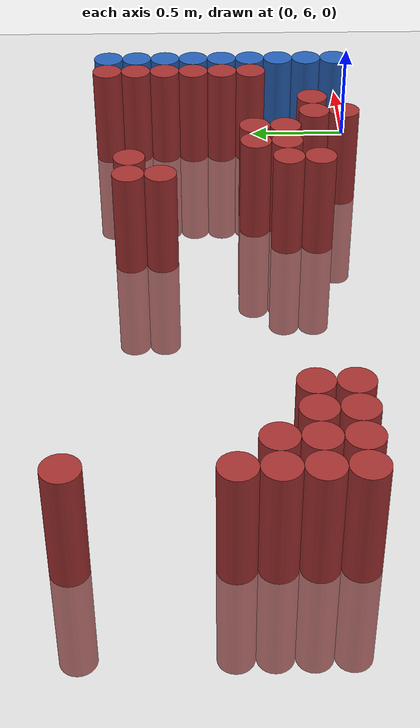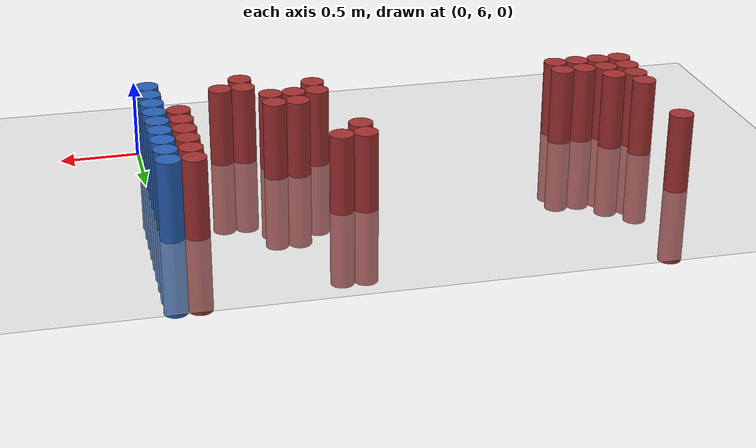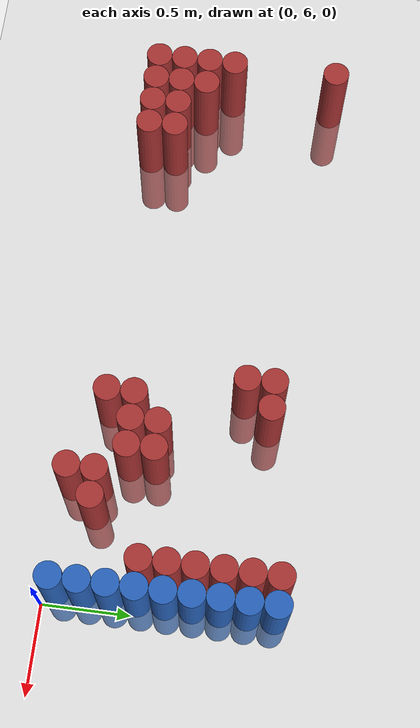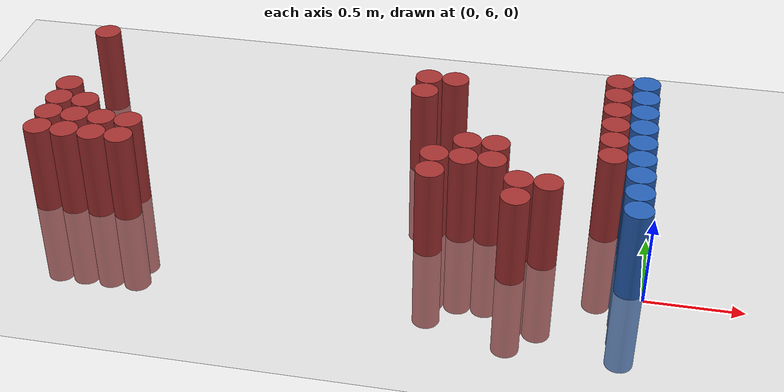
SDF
<sdf version="1.6">
 <world name="default">
  <model name="ground_plane">
   <static>1</static>
   <link name="link">
    <collision name="collision">
     <geometry><plane><normal>0 0 1</normal><size>100 100</size></plane></geometry>
     <surface><friction><ode><mu>100</mu><mu2>50</mu2></ode></friction></surface>
    </collision>
    <visual name="visual">
     <cast_shadows>0</cast_shadows>
     <geometry><plane><normal>0 0 1</normal><size>100 100</size></plane></geometry>
     <material>
      <script><uri>file://media/materials/scripts/gazebo.material</uri><name>Gazebo/Grey</name></script>
     </material>
    </visual>
   </link>
  </model>
  <model name="unit_cylinder_206">
   <static>1</static>
   <pose>-3.225000 6.225000 0.000000 0.000000 0.000000 0.000000</pose>
   <link name="link">
    <inertial>
     <mass>1</mass>
     <inertia><ixx>0.145833</ixx><ixy>0</ixy><ixz>0</ixz><iyy>0.145833</iyy><iyz>0</iyz><izz>0.125</izz></inertia>
    </inertial>
    <collision name="collision">
     <geometry><cylinder><radius>0.075000</radius><length>1</length></cylinder></geometry>
    </collision>
    <visual name="visual">
     <geometry><cylinder><radius>0.075000</radius><length>1</length></cylinder></geometry>
     <material>
      <ambient>0.648000 0.192000 0.192000 1</ambient>
      <diffuse>0.648000 0.192000 0.192000 1</diffuse>
     </material>
     <material>
      <script><name>Gazebo/Grey</name><uri>file://media/materials/scripts/gazebo.material</uri></script>
     </material>
    </visual>
    <sensor name="sensor_contact" type="contact"><contact><collision>collision</collision></contact></sensor>
   </link>
   <plugin filename="gz-sim-touchplugin-system" name="gz::sim::systems::TouchPlugin">
    <target>robot</target>
    <namespace>robot</namespace>
    <time>0.001</time>
    <enabled>true</enabled>
   </plugin>
  </model>
  <model name="unit_cylinder_207">
   <static>1</static>
   <pose>-3.225000 6.375000 0.000000 0.000000 0.000000 0.000000</pose>
   <link name="link">
    <inertial>
     <mass>1</mass>
     <inertia><ixx>0.145833</ixx><ixy>0</ixy><ixz>0</ixz><iyy>0.145833</iyy><iyz>0</iyz><izz>0.125</izz></inertia>
    </inertial>
    <collision name="collision">
     <geometry><cylinder><radius>0.075000</radius><length>1</length></cylinder></geometry>
    </collision>
    <visual name="visual">
     <geometry><cylinder><radius>0.075000</radius><length>1</length></cylinder></geometry>
     <material>
      <ambient>0.648000 0.192000 0.192000 1</ambient>
      <diffuse>0.648000 0.192000 0.192000 1</diffuse>
     </material>
     <material>
      <script><name>Gazebo/Grey</name><uri>file://media/materials/scripts/gazebo.material</uri></script>
     </material>
    </visual>
    <sensor name="sensor_contact" type="contact"><contact><collision>collision</collision></contact></sensor>
   </link>
   <plugin filename="gz-sim-touchplugin-system" name="gz::sim::systems::TouchPlugin">
    <target>robot</target>
    <namespace>robot</namespace>
    <time>0.001</time>
    <enabled>true</enabled>
   </plugin>
  </model>
  <model name="unit_cylinder_208">
   <static>1</static>
   <pose>-3.225000 6.525000 0.000000 0.000000 0.000000 0.000000</pose>
   <link name="link">
    <inertial>
     <mass>1</mass>
     <inertia><ixx>0.145833</ixx><ixy>0</ixy><ixz>0</ixz><iyy>0.145833</iyy><iyz>0</iyz><izz>0.125</izz></inertia>
    </inertial>
    <collision name="collision">
     <geometry><cylinder><radius>0.075000</radius><length>1</length></cylinder></geometry>
    </collision>
    <visual name="visual">
     <geometry><cylinder><radius>0.075000</radius><length>1</length></cylinder></geometry>
     <material>
      <ambient>0.648000 0.192000 0.192000 1</ambient>
      <diffuse>0.648000 0.192000 0.192000 1</diffuse>
     </material>
     <material>
      <script><name>Gazebo/Grey</name><uri>file://media/materials/scripts/gazebo.material</uri></script>
     </material>
    </visual>
    <sensor name="sensor_contact" type="contact"><contact><collision>collision</collision></contact></sensor>
   </link>
   <plugin filename="gz-sim-touchplugin-system" name="gz::sim::systems::TouchPlugin">
    <target>robot</target>
    <namespace>robot</namespace>
    <time>0.001</time>
    <enabled>true</enabled>
   </plugin>
  </model>
  <model name="unit_cylinder_209">
   <static>1</static>
   <pose>-3.225000 6.675000 0.000000 0.000000 0.000000 0.000000</pose>
   <link name="link">
    <inertial>
     <mass>1</mass>
     <inertia><ixx>0.145833</ixx><ixy>0</ixy><ixz>0</ixz><iyy>0.145833</iyy><iyz>0</iyz><izz>0.125</izz></inertia>
    </inertial>
    <collision name="collision">
     <geometry><cylinder><radius>0.075000</radius><length>1</length></cylinder></geometry>
    </collision>
    <visual name="visual">
     <geometry><cylinder><radius>0.075000</radius><length>1</length></cylinder></geometry>
     <material>
      <ambient>0.648000 0.192000 0.192000 1</ambient>
      <diffuse>0.648000 0.192000 0.192000 1</diffuse>
     </material>
     <material>
      <script><name>Gazebo/Grey</name><uri>file://media/materials/scripts/gazebo.material</uri></script>
     </material>
    </visual>
    <sensor name="sensor_contact" type="contact"><contact><collision>collision</collision></contact></sensor>
   </link>
   <plugin filename="gz-sim-touchplugin-system" name="gz::sim::systems::TouchPlugin">
    <target>robot</target>
    <namespace>robot</namespace>
    <time>0.001</time>
    <enabled>true</enabled>
   </plugin>
  </model>
  <model name="unit_cylinder_210">
   <static>1</static>
   <pose>-3.225000 7.275000 0.000000 0.000000 0.000000 0.000000</pose>
   <link name="link">
    <inertial>
     <mass>1</mass>
     <inertia><ixx>0.145833</ixx><ixy>0</ixy><ixz>0</ixz><iyy>0.145833</iyy><iyz>0</iyz><izz>0.125</izz></inertia>
    </inertial>
    <collision name="collision">
     <geometry><cylinder><radius>0.075000</radius><length>1</length></cylinder></geometry>
    </collision>
    <visual name="visual">
     <geometry><cylinder><radius>0.075000</radius><length>1</length></cylinder></geometry>
     <material>
      <ambient>0.648000 0.192000 0.192000 1</ambient>
      <diffuse>0.648000 0.192000 0.192000 1</diffuse>
     </material>
     <material>
      <script><name>Gazebo/Grey</name><uri>file://media/materials/scripts/gazebo.material</uri></script>
     </material>
    </visual>
    <sensor name="sensor_contact" type="contact"><contact><collision>collision</collision></contact></sensor>
   </link>
   <plugin filename="gz-sim-touchplugin-system" name="gz::sim::systems::TouchPlugin">
    <target>robot</target>
    <namespace>robot</namespace>
    <time>0.001</time>
    <enabled>true</enabled>
   </plugin>
  </model>
  <model name="unit_cylinder_216">
   <static>1</static>
   <pose>-3.075000 6.225000 0.000000 0.000000 0.000000 0.000000</pose>
   <link name="link">
    <inertial>
     <mass>1</mass>
     <inertia><ixx>0.145833</ixx><ixy>0</ixy><ixz>0</ixz><iyy>0.145833</iyy><iyz>0</iyz><izz>0.125</izz></inertia>
    </inertial>
    <collision name="collision">
     <geometry><cylinder><radius>0.075000</radius><length>1</length></cylinder></geometry>
    </collision>
    <visual name="visual">
     <geometry><cylinder><radius>0.075000</radius><length>1</length></cylinder></geometry>
     <material>
      <ambient>0.648000 0.192000 0.192000 1</ambient>
      <diffuse>0.648000 0.192000 0.192000 1</diffuse>
     </material>
     <material>
      <script><name>Gazebo/Grey</name><uri>file://media/materials/scripts/gazebo.material</uri></script>
     </material>
    </visual>
    <sensor name="sensor_contact" type="contact"><contact><collision>collision</collision></contact></sensor>
   </link>
   <plugin filename="gz-sim-touchplugin-system" name="gz::sim::systems::TouchPlugin">
    <target>robot</target>
    <namespace>robot</namespace>
    <time>0.001</time>
    <enabled>true</enabled>
   </plugin>
  </model>
  <model name="unit_cylinder_217">
   <static>1</static>
   <pose>-3.075000 6.375000 0.000000 0.000000 0.000000 0.000000</pose>
   <link name="link">
    <inertial>
     <mass>1</mass>
     <inertia><ixx>0.145833</ixx><ixy>0</ixy><ixz>0</ixz><iyy>0.145833</iyy><iyz>0</iyz><izz>0.125</izz></inertia>
    </inertial>
    <collision name="collision">
     <geometry><cylinder><radius>0.075000</radius><length>1</length></cylinder></geometry>
    </collision>
    <visual name="visual">
     <geometry><cylinder><radius>0.075000</radius><length>1</length></cylinder></geometry>
     <material>
      <ambient>0.648000 0.192000 0.192000 1</ambient>
      <diffuse>0.648000 0.192000 0.192000 1</diffuse>
     </material>
     <material>
      <script><name>Gazebo/Grey</name><uri>file://media/materials/scripts/gazebo.material</uri></script>
     </material>
    </visual>
    <sensor name="sensor_contact" type="contact"><contact><collision>collision</collision></contact></sensor>
   </link>
   <plugin filename="gz-sim-touchplugin-system" name="gz::sim::systems::TouchPlugin">
    <target>robot</target>
    <namespace>robot</namespace>
    <time>0.001</time>
    <enabled>true</enabled>
   </plugin>
  </model>
  <model name="unit_cylinder_218">
   <static>1</static>
   <pose>-3.075000 6.525000 0.000000 0.000000 0.000000 0.000000</pose>
   <link name="link">
    <inertial>
     <mass>1</mass>
     <inertia><ixx>0.145833</ixx><ixy>0</ixy><ixz>0</ixz><iyy>0.145833</iyy><iyz>0</iyz><izz>0.125</izz></inertia>
    </inertial>
    <collision name="collision">
     <geometry><cylinder><radius>0.075000</radius><length>1</length></cylinder></geometry>
    </collision>
    <visual name="visual">
     <geometry><cylinder><radius>0.075000</radius><length>1</length></cylinder></geometry>
     <material>
      <ambient>0.648000 0.192000 0.192000 1</ambient>
      <diffuse>0.648000 0.192000 0.192000 1</diffuse>
     </material>
     <material>
      <script><name>Gazebo/Grey</name><uri>file://media/materials/scripts/gazebo.material</uri></script>
     </material>
    </visual>
    <sensor name="sensor_contact" type="contact"><contact><collision>collision</collision></contact></sensor>
   </link>
   <plugin filename="gz-sim-touchplugin-system" name="gz::sim::systems::TouchPlugin">
    <target>robot</target>
    <namespace>robot</namespace>
    <time>0.001</time>
    <enabled>true</enabled>
   </plugin>
  </model>
  <model name="unit_cylinder_226">
   <static>1</static>
   <pose>-2.925000 6.225000 0.000000 0.000000 0.000000 0.000000</pose>
   <link name="link">
    <inertial>
     <mass>1</mass>
     <inertia><ixx>0.145833</ixx><ixy>0</ixy><ixz>0</ixz><iyy>0.145833</iyy><iyz>0</iyz><izz>0.125</izz></inertia>
    </inertial>
    <collision name="collision">
     <geometry><cylinder><radius>0.075000</radius><length>1</length></cylinder></geometry>
    </collision>
    <visual name="visual">
     <geometry><cylinder><radius>0.075000</radius><length>1</length></cylinder></geometry>
     <material>
      <ambient>0.648000 0.192000 0.192000 1</ambient>
      <diffuse>0.648000 0.192000 0.192000 1</diffuse>
     </material>
     <material>
      <script><name>Gazebo/Grey</name><uri>file://media/materials/scripts/gazebo.material</uri></script>
     </material>
    </visual>
    <sensor name="sensor_contact" type="contact"><contact><collision>collision</collision></contact></sensor>
   </link>
   <plugin filename="gz-sim-touchplugin-system" name="gz::sim::systems::TouchPlugin">
    <target>robot</target>
    <namespace>robot</namespace>
    <time>0.001</time>
    <enabled>true</enabled>
   </plugin>
  </model>
  <model name="unit_cylinder_227">
   <static>1</static>
   <pose>-2.925000 6.375000 0.000000 0.000000 0.000000 0.000000</pose>
   <link name="link">
    <inertial>
     <mass>1</mass>
     <inertia><ixx>0.145833</ixx><ixy>0</ixy><ixz>0</ixz><iyy>0.145833</iyy><iyz>0</iyz><izz>0.125</izz></inertia>
    </inertial>
    <collision name="collision">
     <geometry><cylinder><radius>0.075000</radius><length>1</length></cylinder></geometry>
    </collision>
    <visual name="visual">
     <geometry><cylinder><radius>0.075000</radius><length>1</length></cylinder></geometry>
     <material>
      <ambient>0.648000 0.192000 0.192000 1</ambient>
      <diffuse>0.648000 0.192000 0.192000 1</diffuse>
     </material>
     <material>
      <script><name>Gazebo/Grey</name><uri>file://media/materials/scripts/gazebo.material</uri></script>
     </material>
    </visual>
    <sensor name="sensor_contact" type="contact"><contact><collision>collision</collision></contact></sensor>
   </link>
   <plugin filename="gz-sim-touchplugin-system" name="gz::sim::systems::TouchPlugin">
    <target>robot</target>
    <namespace>robot</namespace>
    <time>0.001</time>
    <enabled>true</enabled>
   </plugin>
  </model>
  <model name="unit_cylinder_234">
   <static>1</static>
   <pose>-2.775000 6.225000 0.000000 0.000000 0.000000 0.000000</pose>
   <link name="link">
    <inertial>
     <mass>1</mass>
     <inertia><ixx>0.145833</ixx><ixy>0</ixy><ixz>0</ixz><iyy>0.145833</iyy><iyz>0</iyz><izz>0.125</izz></inertia>
    </inertial>
    <collision name="collision">
     <geometry><cylinder><radius>0.075000</radius><length>1</length></cylinder></geometry>
    </collision>
    <visual name="visual">
     <geometry><cylinder><radius>0.075000</radius><length>1</length></cylinder></geometry>
     <material>
      <ambient>0.648000 0.192000 0.192000 1</ambient>
      <diffuse>0.648000 0.192000 0.192000 1</diffuse>
     </material>
     <material>
      <script><name>Gazebo/Grey</name><uri>file://media/materials/scripts/gazebo.material</uri></script>
     </material>
    </visual>
    <sensor name="sensor_contact" type="contact"><contact><collision>collision</collision></contact></sensor>
   </link>
   <plugin filename="gz-sim-touchplugin-system" name="gz::sim::systems::TouchPlugin">
    <target>robot</target>
    <namespace>robot</namespace>
    <time>0.001</time>
    <enabled>true</enabled>
   </plugin>
  </model>
  <model name="unit_cylinder_235">
   <static>1</static>
   <pose>-2.775000 6.375000 0.000000 0.000000 0.000000 0.000000</pose>
   <link name="link">
    <inertial>
     <mass>1</mass>
     <inertia><ixx>0.145833</ixx><ixy>0</ixy><ixz>0</ixz><iyy>0.145833</iyy><iyz>0</iyz><izz>0.125</izz></inertia>
    </inertial>
    <collision name="collision">
     <geometry><cylinder><radius>0.075000</radius><length>1</length></cylinder></geometry>
    </collision>
    <visual name="visual">
     <geometry><cylinder><radius>0.075000</radius><length>1</length></cylinder></geometry>
     <material>
      <ambient>0.648000 0.192000 0.192000 1</ambient>
      <diffuse>0.648000 0.192000 0.192000 1</diffuse>
     </material>
     <material>
      <script><name>Gazebo/Grey</name><uri>file://media/materials/scripts/gazebo.material</uri></script>
     </material>
    </visual>
    <sensor name="sensor_contact" type="contact"><contact><collision>collision</collision></contact></sensor>
   </link>
   <plugin filename="gz-sim-touchplugin-system" name="gz::sim::systems::TouchPlugin">
    <target>robot</target>
    <namespace>robot</namespace>
    <time>0.001</time>
    <enabled>true</enabled>
   </plugin>
  </model>
  <model name="unit_cylinder_268">
   <static>1</static>
   <pose>-1.275000 6.975000 0.000000 0.000000 0.000000 0.000000</pose>
   <link name="link">
    <inertial>
     <mass>1</mass>
     <inertia><ixx>0.145833</ixx><ixy>0</ixy><ixz>0</ixz><iyy>0.145833</iyy><iyz>0</iyz><izz>0.125</izz></inertia>
    </inertial>
    <collision name="collision">
     <geometry><cylinder><radius>0.075000</radius><length>1</length></cylinder></geometry>
    </collision>
    <visual name="visual">
     <geometry><cylinder><radius>0.075000</radius><length>1</length></cylinder></geometry>
     <material>
      <ambient>0.648000 0.192000 0.192000 1</ambient>
      <diffuse>0.648000 0.192000 0.192000 1</diffuse>
     </material>
     <material>
      <script><name>Gazebo/Grey</name><uri>file://media/materials/scripts/gazebo.material</uri></script>
     </material>
    </visual>
    <sensor name="sensor_contact" type="contact"><contact><collision>collision</collision></contact></sensor>
   </link>
   <plugin filename="gz-sim-touchplugin-system" name="gz::sim::systems::TouchPlugin">
    <target>robot</target>
    <namespace>robot</namespace>
    <time>0.001</time>
    <enabled>true</enabled>
   </plugin>
  </model>
  <model name="unit_cylinder_269">
   <static>1</static>
   <pose>-1.275000 7.125000 0.000000 0.000000 0.000000 0.000000</pose>
   <link name="link">
    <inertial>
     <mass>1</mass>
     <inertia><ixx>0.145833</ixx><ixy>0</ixy><ixz>0</ixz><iyy>0.145833</iyy><iyz>0</iyz><izz>0.125</izz></inertia>
    </inertial>
    <collision name="collision">
     <geometry><cylinder><radius>0.075000</radius><length>1</length></cylinder></geometry>
    </collision>
    <visual name="visual">
     <geometry><cylinder><radius>0.075000</radius><length>1</length></cylinder></geometry>
     <material>
      <ambient>0.648000 0.192000 0.192000 1</ambient>
      <diffuse>0.648000 0.192000 0.192000 1</diffuse>
     </material>
     <material>
      <script><name>Gazebo/Grey</name><uri>file://media/materials/scripts/gazebo.material</uri></script>
     </material>
    </visual>
    <sensor name="sensor_contact" type="contact"><contact><collision>collision</collision></contact></sensor>
   </link>
   <plugin filename="gz-sim-touchplugin-system" name="gz::sim::systems::TouchPlugin">
    <target>robot</target>
    <namespace>robot</namespace>
    <time>0.001</time>
    <enabled>true</enabled>
   </plugin>
  </model>
  <model name="unit_cylinder_270">
   <static>1</static>
   <pose>-1.125000 6.225000 0.000000 0.000000 0.000000 0.000000</pose>
   <link name="link">
    <inertial>
     <mass>1</mass>
     <inertia><ixx>0.145833</ixx><ixy>0</ixy><ixz>0</ixz><iyy>0.145833</iyy><iyz>0</iyz><izz>0.125</izz></inertia>
    </inertial>
    <collision name="collision">
     <geometry><cylinder><radius>0.075000</radius><length>1</length></cylinder></geometry>
    </collision>
    <visual name="visual">
     <geometry><cylinder><radius>0.075000</radius><length>1</length></cylinder></geometry>
     <material>
      <ambient>0.648000 0.192000 0.192000 1</ambient>
      <diffuse>0.648000 0.192000 0.192000 1</diffuse>
     </material>
     <material>
      <script><name>Gazebo/Grey</name><uri>file://media/materials/scripts/gazebo.material</uri></script>
     </material>
    </visual>
    <sensor name="sensor_contact" type="contact"><contact><collision>collision</collision></contact></sensor>
   </link>
   <plugin filename="gz-sim-touchplugin-system" name="gz::sim::systems::TouchPlugin">
    <target>robot</target>
    <namespace>robot</namespace>
    <time>0.001</time>
    <enabled>true</enabled>
   </plugin>
  </model>
  <model name="unit_cylinder_271">
   <static>1</static>
   <pose>-1.125000 6.375000 0.000000 0.000000 0.000000 0.000000</pose>
   <link name="link">
    <inertial>
     <mass>1</mass>
     <inertia><ixx>0.145833</ixx><ixy>0</ixy><ixz>0</ixz><iyy>0.145833</iyy><iyz>0</iyz><izz>0.125</izz></inertia>
    </inertial>
    <collision name="collision">
     <geometry><cylinder><radius>0.075000</radius><length>1</length></cylinder></geometry>
    </collision>
    <visual name="visual">
     <geometry><cylinder><radius>0.075000</radius><length>1</length></cylinder></geometry>
     <material>
      <ambient>0.648000 0.192000 0.192000 1</ambient>
      <diffuse>0.648000 0.192000 0.192000 1</diffuse>
     </material>
     <material>
      <script><name>Gazebo/Grey</name><uri>file://media/materials/scripts/gazebo.material</uri></script>
     </material>
    </visual>
    <sensor name="sensor_contact" type="contact"><contact><collision>collision</collision></contact></sensor>
   </link>
   <plugin filename="gz-sim-touchplugin-system" name="gz::sim::systems::TouchPlugin">
    <target>robot</target>
    <namespace>robot</namespace>
    <time>0.001</time>
    <enabled>true</enabled>
   </plugin>
  </model>
  <model name="unit_cylinder_272">
   <static>1</static>
   <pose>-1.125000 7.125000 0.000000 0.000000 0.000000 0.000000</pose>
   <link name="link">
    <inertial>
     <mass>1</mass>
     <inertia><ixx>0.145833</ixx><ixy>0</ixy><ixz>0</ixz><iyy>0.145833</iyy><iyz>0</iyz><izz>0.125</izz></inertia>
    </inertial>
    <collision name="collision">
     <geometry><cylinder><radius>0.075000</radius><length>1</length></cylinder></geometry>
    </collision>
    <visual name="visual">
     <geometry><cylinder><radius>0.075000</radius><length>1</length></cylinder></geometry>
     <material>
      <ambient>0.648000 0.192000 0.192000 1</ambient>
      <diffuse>0.648000 0.192000 0.192000 1</diffuse>
     </material>
     <material>
      <script><name>Gazebo/Grey</name><uri>file://media/materials/scripts/gazebo.material</uri></script>
     </material>
    </visual>
    <sensor name="sensor_contact" type="contact"><contact><collision>collision</collision></contact></sensor>
   </link>
   <plugin filename="gz-sim-touchplugin-system" name="gz::sim::systems::TouchPlugin">
    <target>robot</target>
    <namespace>robot</namespace>
    <time>0.001</time>
    <enabled>true</enabled>
   </plugin>
  </model>
  <model name="unit_cylinder_274">
   <static>1</static>
   <pose>-0.975000 6.375000 0.000000 0.000000 0.000000 0.000000</pose>
   <link name="link">
    <inertial>
     <mass>1</mass>
     <inertia><ixx>0.145833</ixx><ixy>0</ixy><ixz>0</ixz><iyy>0.145833</iyy><iyz>0</iyz><izz>0.125</izz></inertia>
    </inertial>
    <collision name="collision">
     <geometry><cylinder><radius>0.075000</radius><length>1</length></cylinder></geometry>
    </collision>
    <visual name="visual">
     <geometry><cylinder><radius>0.075000</radius><length>1</length></cylinder></geometry>
     <material>
      <ambient>0.648000 0.192000 0.192000 1</ambient>
      <diffuse>0.648000 0.192000 0.192000 1</diffuse>
     </material>
     <material>
      <script><name>Gazebo/Grey</name><uri>file://media/materials/scripts/gazebo.material</uri></script>
     </material>
    </visual>
    <sensor name="sensor_contact" type="contact"><contact><collision>collision</collision></contact></sensor>
   </link>
   <plugin filename="gz-sim-touchplugin-system" name="gz::sim::systems::TouchPlugin">
    <target>robot</target>
    <namespace>robot</namespace>
    <time>0.001</time>
    <enabled>true</enabled>
   </plugin>
  </model>
  <model name="unit_cylinder_275">
   <static>1</static>
   <pose>-0.975000 6.525000 0.000000 0.000000 0.000000 0.000000</pose>
   <link name="link">
    <inertial>
     <mass>1</mass>
     <inertia><ixx>0.145833</ixx><ixy>0</ixy><ixz>0</ixz><iyy>0.145833</iyy><iyz>0</iyz><izz>0.125</izz></inertia>
    </inertial>
    <collision name="collision">
     <geometry><cylinder><radius>0.075000</radius><length>1</length></cylinder></geometry>
    </collision>
    <visual name="visual">
     <geometry><cylinder><radius>0.075000</radius><length>1</length></cylinder></geometry>
     <material>
      <ambient>0.648000 0.192000 0.192000 1</ambient>
      <diffuse>0.648000 0.192000 0.192000 1</diffuse>
     </material>
     <material>
      <script><name>Gazebo/Grey</name><uri>file://media/materials/scripts/gazebo.material</uri></script>
     </material>
    </visual>
    <sensor name="sensor_contact" type="contact"><contact><collision>collision</collision></contact></sensor>
   </link>
   <plugin filename="gz-sim-touchplugin-system" name="gz::sim::systems::TouchPlugin">
    <target>robot</target>
    <namespace>robot</namespace>
    <time>0.001</time>
    <enabled>true</enabled>
   </plugin>
  </model>
  <model name="unit_cylinder_280">
   <static>1</static>
   <pose>-0.825000 6.375000 0.000000 0.000000 0.000000 0.000000</pose>
   <link name="link">
    <inertial>
     <mass>1</mass>
     <inertia><ixx>0.145833</ixx><ixy>0</ixy><ixz>0</ixz><iyy>0.145833</iyy><iyz>0</iyz><izz>0.125</izz></inertia>
    </inertial>
    <collision name="collision">
     <geometry><cylinder><radius>0.075000</radius><length>1</length></cylinder></geometry>
    </collision>
    <visual name="visual">
     <geometry><cylinder><radius>0.075000</radius><length>1</length></cylinder></geometry>
     <material>
      <ambient>0.648000 0.192000 0.192000 1</ambient>
      <diffuse>0.648000 0.192000 0.192000 1</diffuse>
     </material>
     <material>
      <script><name>Gazebo/Grey</name><uri>file://media/materials/scripts/gazebo.material</uri></script>
     </material>
    </visual>
    <sensor name="sensor_contact" type="contact"><contact><collision>collision</collision></contact></sensor>
   </link>
   <plugin filename="gz-sim-touchplugin-system" name="gz::sim::systems::TouchPlugin">
    <target>robot</target>
    <namespace>robot</namespace>
    <time>0.001</time>
    <enabled>true</enabled>
   </plugin>
  </model>
  <model name="unit_cylinder_281">
   <static>1</static>
   <pose>-0.825000 6.525000 0.000000 0.000000 0.000000 0.000000</pose>
   <link name="link">
    <inertial>
     <mass>1</mass>
     <inertia><ixx>0.145833</ixx><ixy>0</ixy><ixz>0</ixz><iyy>0.145833</iyy><iyz>0</iyz><izz>0.125</izz></inertia>
    </inertial>
    <collision name="collision">
     <geometry><cylinder><radius>0.075000</radius><length>1</length></cylinder></geometry>
    </collision>
    <visual name="visual">
     <geometry><cylinder><radius>0.075000</radius><length>1</length></cylinder></geometry>
     <material>
      <ambient>0.648000 0.192000 0.192000 1</ambient>
      <diffuse>0.648000 0.192000 0.192000 1</diffuse>
     </material>
     <material>
      <script><name>Gazebo/Grey</name><uri>file://media/materials/scripts/gazebo.material</uri></script>
     </material>
    </visual>
    <sensor name="sensor_contact" type="contact"><contact><collision>collision</collision></contact></sensor>
   </link>
   <plugin filename="gz-sim-touchplugin-system" name="gz::sim::systems::TouchPlugin">
    <target>robot</target>
    <namespace>robot</namespace>
    <time>0.001</time>
    <enabled>true</enabled>
   </plugin>
  </model>
  <model name="unit_cylinder_285">
   <static>1</static>
   <pose>-0.675000 6.075000 0.000000 0.000000 0.000000 0.000000</pose>
   <link name="link">
    <inertial>
     <mass>1</mass>
     <inertia><ixx>0.145833</ixx><ixy>0</ixy><ixz>0</ixz><iyy>0.145833</iyy><iyz>0</iyz><izz>0.125</izz></inertia>
    </inertial>
    <collision name="collision">
     <geometry><cylinder><radius>0.075000</radius><length>1</length></cylinder></geometry>
    </collision>
    <visual name="visual">
     <geometry><cylinder><radius>0.075000</radius><length>1</length></cylinder></geometry>
     <material>
      <ambient>0.648000 0.192000 0.192000 1</ambient>
      <diffuse>0.648000 0.192000 0.192000 1</diffuse>
     </material>
     <material>
      <script><name>Gazebo/Grey</name><uri>file://media/materials/scripts/gazebo.material</uri></script>
     </material>
    </visual>
    <sensor name="sensor_contact" type="contact"><contact><collision>collision</collision></contact></sensor>
   </link>
   <plugin filename="gz-sim-touchplugin-system" name="gz::sim::systems::TouchPlugin">
    <target>robot</target>
    <namespace>robot</namespace>
    <time>0.001</time>
    <enabled>true</enabled>
   </plugin>
  </model>
  <model name="unit_cylinder_286">
   <static>1</static>
   <pose>-0.675000 6.225000 0.000000 0.000000 0.000000 0.000000</pose>
   <link name="link">
    <inertial>
     <mass>1</mass>
     <inertia><ixx>0.145833</ixx><ixy>0</ixy><ixz>0</ixz><iyy>0.145833</iyy><iyz>0</iyz><izz>0.125</izz></inertia>
    </inertial>
    <collision name="collision">
     <geometry><cylinder><radius>0.075000</radius><length>1</length></cylinder></geometry>
    </collision>
    <visual name="visual">
     <geometry><cylinder><radius>0.075000</radius><length>1</length></cylinder></geometry>
     <material>
      <ambient>0.648000 0.192000 0.192000 1</ambient>
      <diffuse>0.648000 0.192000 0.192000 1</diffuse>
     </material>
     <material>
      <script><name>Gazebo/Grey</name><uri>file://media/materials/scripts/gazebo.material</uri></script>
     </material>
    </visual>
    <sensor name="sensor_contact" type="contact"><contact><collision>collision</collision></contact></sensor>
   </link>
   <plugin filename="gz-sim-touchplugin-system" name="gz::sim::systems::TouchPlugin">
    <target>robot</target>
    <namespace>robot</namespace>
    <time>0.001</time>
    <enabled>true</enabled>
   </plugin>
  </model>
  <model name="unit_cylinder_288">
   <static>1</static>
   <pose>-0.525000 6.225000 0.000000 0.000000 0.000000 0.000000</pose>
   <link name="link">
    <inertial>
     <mass>1</mass>
     <inertia><ixx>0.145833</ixx><ixy>0</ixy><ixz>0</ixz><iyy>0.145833</iyy><iyz>0</iyz><izz>0.125</izz></inertia>
    </inertial>
    <collision name="collision">
     <geometry><cylinder><radius>0.075000</radius><length>1</length></cylinder></geometry>
    </collision>
    <visual name="visual">
     <geometry><cylinder><radius>0.075000</radius><length>1</length></cylinder></geometry>
     <material>
      <ambient>0.648000 0.192000 0.192000 1</ambient>
      <diffuse>0.648000 0.192000 0.192000 1</diffuse>
     </material>
     <material>
      <script><name>Gazebo/Grey</name><uri>file://media/materials/scripts/gazebo.material</uri></script>
     </material>
    </visual>
    <sensor name="sensor_contact" type="contact"><contact><collision>collision</collision></contact></sensor>
   </link>
   <plugin filename="gz-sim-touchplugin-system" name="gz::sim::systems::TouchPlugin">
    <target>robot</target>
    <namespace>robot</namespace>
    <time>0.001</time>
    <enabled>true</enabled>
   </plugin>
  </model>
  <model name="unit_cylinder_307">
   <static>1</static>
   <pose>-0.225000 6.525000 0.000000 0.000000 0.000000 0.000000</pose>
   <link name="link">
    <inertial>
     <mass>1</mass>
     <inertia><ixx>0.145833</ixx><ixy>0</ixy><ixz>0</ixz><iyy>0.145833</iyy><iyz>0</iyz><izz>0.125</izz></inertia>
    </inertial>
    <collision name="collision">
     <geometry><cylinder><radius>0.075000</radius><length>1</length></cylinder></geometry>
    </collision>
    <visual name="visual">
     <geometry><cylinder><radius>0.075000</radius><length>1</length></cylinder></geometry>
     <material>
      <ambient>0.648000 0.192000 0.192000 1</ambient>
      <diffuse>0.648000 0.192000 0.192000 1</diffuse>
     </material>
     <material>
      <script><name>Gazebo/Grey</name><uri>file://media/materials/scripts/gazebo.material</uri></script>
     </material>
    </visual>
    <sensor name="sensor_contact" type="contact"><contact><collision>collision</collision></contact></sensor>
   </link>
   <plugin filename="gz-sim-touchplugin-system" name="gz::sim::systems::TouchPlugin">
    <target>robot</target>
    <namespace>robot</namespace>
    <time>0.001</time>
    <enabled>true</enabled>
   </plugin>
  </model>
  <model name="unit_cylinder_308">
   <static>1</static>
   <pose>-0.225000 6.675000 0.000000 0.000000 0.000000 0.000000</pose>
   <link name="link">
    <inertial>
     <mass>1</mass>
     <inertia><ixx>0.145833</ixx><ixy>0</ixy><ixz>0</ixz><iyy>0.145833</iyy><iyz>0</iyz><izz>0.125</izz></inertia>
    </inertial>
    <collision name="collision">
     <geometry><cylinder><radius>0.075000</radius><length>1</length></cylinder></geometry>
    </collision>
    <visual name="visual">
     <geometry><cylinder><radius>0.075000</radius><length>1</length></cylinder></geometry>
     <material>
      <ambient>0.648000 0.192000 0.192000 1</ambient>
      <diffuse>0.648000 0.192000 0.192000 1</diffuse>
     </material>
     <material>
      <script><name>Gazebo/Grey</name><uri>file://media/materials/scripts/gazebo.material</uri></script>
     </material>
    </visual>
    <sensor name="sensor_contact" type="contact"><contact><collision>collision</collision></contact></sensor>
   </link>
   <plugin filename="gz-sim-touchplugin-system" name="gz::sim::systems::TouchPlugin">
    <target>robot</target>
    <namespace>robot</namespace>
    <time>0.001</time>
    <enabled>true</enabled>
   </plugin>
  </model>
  <model name="unit_cylinder_309">
   <static>1</static>
   <pose>-0.225000 6.825000 0.000000 0.000000 0.000000 0.000000</pose>
   <link name="link">
    <inertial>
     <mass>1</mass>
     <inertia><ixx>0.145833</ixx><ixy>0</ixy><ixz>0</ixz><iyy>0.145833</iyy><iyz>0</iyz><izz>0.125</izz></inertia>
    </inertial>
    <collision name="collision">
     <geometry><cylinder><radius>0.075000</radius><length>1</length></cylinder></geometry>
    </collision>
    <visual name="visual">
     <geometry><cylinder><radius>0.075000</radius><length>1</length></cylinder></geometry>
     <material>
      <ambient>0.648000 0.192000 0.192000 1</ambient>
      <diffuse>0.648000 0.192000 0.192000 1</diffuse>
     </material>
     <material>
      <script><name>Gazebo/Grey</name><uri>file://media/materials/scripts/gazebo.material</uri></script>
     </material>
    </visual>
    <sensor name="sensor_contact" type="contact"><contact><collision>collision</collision></contact></sensor>
   </link>
   <plugin filename="gz-sim-touchplugin-system" name="gz::sim::systems::TouchPlugin">
    <target>robot</target>
    <namespace>robot</namespace>
    <time>0.001</time>
    <enabled>true</enabled>
   </plugin>
  </model>
  <model name="unit_cylinder_310">
   <static>1</static>
   <pose>-0.225000 6.975000 0.000000 0.000000 0.000000 0.000000</pose>
   <link name="link">
    <inertial>
     <mass>1</mass>
     <inertia><ixx>0.145833</ixx><ixy>0</ixy><ixz>0</ixz><iyy>0.145833</iyy><iyz>0</iyz><izz>0.125</izz></inertia>
    </inertial>
    <collision name="collision">
     <geometry><cylinder><radius>0.075000</radius><length>1</length></cylinder></geometry>
    </collision>
    <visual name="visual">
     <geometry><cylinder><radius>0.075000</radius><length>1</length></cylinder></geometry>
     <material>
      <ambient>0.648000 0.192000 0.192000 1</ambient>
      <diffuse>0.648000 0.192000 0.192000 1</diffuse>
     </material>
     <material>
      <script><name>Gazebo/Grey</name><uri>file://media/materials/scripts/gazebo.material</uri></script>
     </material>
    </visual>
    <sensor name="sensor_contact" type="contact"><contact><collision>collision</collision></contact></sensor>
   </link>
   <plugin filename="gz-sim-touchplugin-system" name="gz::sim::systems::TouchPlugin">
    <target>robot</target>
    <namespace>robot</namespace>
    <time>0.001</time>
    <enabled>true</enabled>
   </plugin>
  </model>
  <model name="unit_cylinder_311">
   <static>1</static>
   <pose>-0.225000 7.125000 0.000000 0.000000 0.000000 0.000000</pose>
   <link name="link">
    <inertial>
     <mass>1</mass>
     <inertia><ixx>0.145833</ixx><ixy>0</ixy><ixz>0</ixz><iyy>0.145833</iyy><iyz>0</iyz><izz>0.125</izz></inertia>
    </inertial>
    <collision name="collision">
     <geometry><cylinder><radius>0.075000</radius><length>1</length></cylinder></geometry>
    </collision>
    <visual name="visual">
     <geometry><cylinder><radius>0.075000</radius><length>1</length></cylinder></geometry>
     <material>
      <ambient>0.648000 0.192000 0.192000 1</ambient>
      <diffuse>0.648000 0.192000 0.192000 1</diffuse>
     </material>
     <material>
      <script><name>Gazebo/Grey</name><uri>file://media/materials/scripts/gazebo.material</uri></script>
     </material>
    </visual>
    <sensor name="sensor_contact" type="contact"><contact><collision>collision</collision></contact></sensor>
   </link>
   <plugin filename="gz-sim-touchplugin-system" name="gz::sim::systems::TouchPlugin">
    <target>robot</target>
    <namespace>robot</namespace>
    <time>0.001</time>
    <enabled>true</enabled>
   </plugin>
  </model>
  <model name="unit_cylinder_312">
   <static>1</static>
   <pose>-0.225000 7.275000 0.000000 0.000000 0.000000 0.000000</pose>
   <link name="link">
    <inertial>
     <mass>1</mass>
     <inertia><ixx>0.145833</ixx><ixy>0</ixy><ixz>0</ixz><iyy>0.145833</iyy><iyz>0</iyz><izz>0.125</izz></inertia>
    </inertial>
    <collision name="collision">
     <geometry><cylinder><radius>0.075000</radius><length>1</length></cylinder></geometry>
    </collision>
    <visual name="visual">
     <geometry><cylinder><radius>0.075000</radius><length>1</length></cylinder></geometry>
     <material>
      <ambient>0.648000 0.192000 0.192000 1</ambient>
      <diffuse>0.648000 0.192000 0.192000 1</diffuse>
     </material>
     <material>
      <script><name>Gazebo/Grey</name><uri>file://media/materials/scripts/gazebo.material</uri></script>
     </material>
    </visual>
    <sensor name="sensor_contact" type="contact"><contact><collision>collision</collision></contact></sensor>
   </link>
   <plugin filename="gz-sim-touchplugin-system" name="gz::sim::systems::TouchPlugin">
    <target>robot</target>
    <namespace>robot</namespace>
    <time>0.001</time>
    <enabled>true</enabled>
   </plugin>
  </model>
  <model name="unit_cylinder_327">
   <static>1</static>
   <pose>-0.075000 6.075000 0.000000 0.000000 0.000000 0.000000</pose>
   <link name="link">
    <inertial>
     <mass>1</mass>
     <inertia><ixx>0.145833</ixx><ixy>0</ixy><ixz>0</ixz><iyy>0.145833</iyy><iyz>0</iyz><izz>0.125</izz></inertia>
    </inertial>
    <collision name="collision">
     <geometry><cylinder><radius>0.075000</radius><length>1</length></cylinder></geometry>
    </collision>
    <visual name="visual">
     <geometry><cylinder><radius>0.075000</radius><length>1</length></cylinder></geometry>
     <material>
      <ambient>0.152000 0.379000 0.720000 1</ambient>
      <diffuse>0.152000 0.379000 0.720000 1</diffuse>
     </material>
     <material>
      <script><name>Gazebo/Grey</name><uri>file://media/materials/scripts/gazebo.material</uri></script>
     </material>
    </visual>
    <sensor name="sensor_contact" type="contact"><contact><collision>collision</collision></contact></sensor>
   </link>
   <plugin filename="gz-sim-touchplugin-system" name="gz::sim::systems::TouchPlugin">
    <target>robot</target>
    <namespace>robot</namespace>
    <time>0.001</time>
    <enabled>true</enabled>
   </plugin>
  </model>
  <model name="unit_cylinder_328">
   <static>1</static>
   <pose>-0.075000 6.225000 0.000000 0.000000 0.000000 0.000000</pose>
   <link name="link">
    <inertial>
     <mass>1</mass>
     <inertia><ixx>0.145833</ixx><ixy>0</ixy><ixz>0</ixz><iyy>0.145833</iyy><iyz>0</iyz><izz>0.125</izz></inertia>
    </inertial>
    <collision name="collision">
     <geometry><cylinder><radius>0.075000</radius><length>1</length></cylinder></geometry>
    </collision>
    <visual name="visual">
     <geometry><cylinder><radius>0.075000</radius><length>1</length></cylinder></geometry>
     <material>
      <ambient>0.152000 0.379000 0.720000 1</ambient>
      <diffuse>0.152000 0.379000 0.720000 1</diffuse>
     </material>
     <material>
      <script><name>Gazebo/Grey</name><uri>file://media/materials/scripts/gazebo.material</uri></script>
     </material>
    </visual>
    <sensor name="sensor_contact" type="contact"><contact><collision>collision</collision></contact></sensor>
   </link>
   <plugin filename="gz-sim-touchplugin-system" name="gz::sim::systems::TouchPlugin">
    <target>robot</target>
    <namespace>robot</namespace>
    <time>0.001</time>
    <enabled>true</enabled>
   </plugin>
  </model>
  <model name="unit_cylinder_329">
   <static>1</static>
   <pose>-0.075000 6.375000 0.000000 0.000000 0.000000 0.000000</pose>
   <link name="link">
    <inertial>
     <mass>1</mass>
     <inertia><ixx>0.145833</ixx><ixy>0</ixy><ixz>0</ixz><iyy>0.145833</iyy><iyz>0</iyz><izz>0.125</izz></inertia>
    </inertial>
    <collision name="collision">
     <geometry><cylinder><radius>0.075000</radius><length>1</length></cylinder></geometry>
    </collision>
    <visual name="visual">
     <geometry><cylinder><radius>0.075000</radius><length>1</length></cylinder></geometry>
     <material>
      <ambient>0.152000 0.379000 0.720000 1</ambient>
      <diffuse>0.152000 0.379000 0.720000 1</diffuse>
     </material>
     <material>
      <script><name>Gazebo/Grey</name><uri>file://media/materials/scripts/gazebo.material</uri></script>
     </material>
    </visual>
    <sensor name="sensor_contact" type="contact"><contact><collision>collision</collision></contact></sensor>
   </link>
   <plugin filename="gz-sim-touchplugin-system" name="gz::sim::systems::TouchPlugin">
    <target>robot</target>
    <namespace>robot</namespace>
    <time>0.001</time>
    <enabled>true</enabled>
   </plugin>
  </model>
  <model name="unit_cylinder_330">
   <static>1</static>
   <pose>-0.075000 6.525000 0.000000 0.000000 0.000000 0.000000</pose>
   <link name="link">
    <inertial>
     <mass>1</mass>
     <inertia><ixx>0.145833</ixx><ixy>0</ixy><ixz>0</ixz><iyy>0.145833</iyy><iyz>0</iyz><izz>0.125</izz></inertia>
    </inertial>
    <collision name="collision">
     <geometry><cylinder><radius>0.075000</radius><length>1</length></cylinder></geometry>
    </collision>
    <visual name="visual">
     <geometry><cylinder><radius>0.075000</radius><length>1</length></cylinder></geometry>
     <material>
      <ambient>0.152000 0.379000 0.720000 1</ambient>
      <diffuse>0.152000 0.379000 0.720000 1</diffuse>
     </material>
     <material>
      <script><name>Gazebo/Grey</name><uri>file://media/materials/scripts/gazebo.material</uri></script>
     </material>
    </visual>
    <sensor name="sensor_contact" type="contact"><contact><collision>collision</collision></contact></sensor>
   </link>
   <plugin filename="gz-sim-touchplugin-system" name="gz::sim::systems::TouchPlugin">
    <target>robot</target>
    <namespace>robot</namespace>
    <time>0.001</time>
    <enabled>true</enabled>
   </plugin>
  </model>
  <model name="unit_cylinder_331">
   <static>1</static>
   <pose>-0.075000 6.675000 0.000000 0.000000 0.000000 0.000000</pose>
   <link name="link">
    <inertial>
     <mass>1</mass>
     <inertia><ixx>0.145833</ixx><ixy>0</ixy><ixz>0</ixz><iyy>0.145833</iyy><iyz>0</iyz><izz>0.125</izz></inertia>
    </inertial>
    <collision name="collision">
     <geometry><cylinder><radius>0.075000</radius><length>1</length></cylinder></geometry>
    </collision>
    <visual name="visual">
     <geometry><cylinder><radius>0.075000</radius><length>1</length></cylinder></geometry>
     <material>
      <ambient>0.152000 0.379000 0.720000 1</ambient>
      <diffuse>0.152000 0.379000 0.720000 1</diffuse>
     </material>
     <material>
      <script><name>Gazebo/Grey</name><uri>file://media/materials/scripts/gazebo.material</uri></script>
     </material>
    </visual>
    <sensor name="sensor_contact" type="contact"><contact><collision>collision</collision></contact></sensor>
   </link>
   <plugin filename="gz-sim-touchplugin-system" name="gz::sim::systems::TouchPlugin">
    <target>robot</target>
    <namespace>robot</namespace>
    <time>0.001</time>
    <enabled>true</enabled>
   </plugin>
  </model>
  <model name="unit_cylinder_332">
   <static>1</static>
   <pose>-0.075000 6.825000 0.000000 0.000000 0.000000 0.000000</pose>
   <link name="link">
    <inertial>
     <mass>1</mass>
     <inertia><ixx>0.145833</ixx><ixy>0</ixy><ixz>0</ixz><iyy>0.145833</iyy><iyz>0</iyz><izz>0.125</izz></inertia>
    </inertial>
    <collision name="collision">
     <geometry><cylinder><radius>0.075000</radius><length>1</length></cylinder></geometry>
    </collision>
    <visual name="visual">
     <geometry><cylinder><radius>0.075000</radius><length>1</length></cylinder></geometry>
     <material>
      <ambient>0.152000 0.379000 0.720000 1</ambient>
      <diffuse>0.152000 0.379000 0.720000 1</diffuse>
     </material>
     <material>
      <script><name>Gazebo/Grey</name><uri>file://media/materials/scripts/gazebo.material</uri></script>
     </material>
    </visual>
    <sensor name="sensor_contact" type="contact"><contact><collision>collision</collision></contact></sensor>
   </link>
   <plugin filename="gz-sim-touchplugin-system" name="gz::sim::systems::TouchPlugin">
    <target>robot</target>
    <namespace>robot</namespace>
    <time>0.001</time>
    <enabled>true</enabled>
   </plugin>
  </model>
  <model name="unit_cylinder_333">
   <static>1</static>
   <pose>-0.075000 6.975000 0.000000 0.000000 0.000000 0.000000</pose>
   <link name="link">
    <inertial>
     <mass>1</mass>
     <inertia><ixx>0.145833</ixx><ixy>0</ixy><ixz>0</ixz><iyy>0.145833</iyy><iyz>0</iyz><izz>0.125</izz></inertia>
    </inertial>
    <collision name="collision">
     <geometry><cylinder><radius>0.075000</radius><length>1</length></cylinder></geometry>
    </collision>
    <visual name="visual">
     <geometry><cylinder><radius>0.075000</radius><length>1</length></cylinder></geometry>
     <material>
      <ambient>0.152000 0.379000 0.720000 1</ambient>
      <diffuse>0.152000 0.379000 0.720000 1</diffuse>
     </material>
     <material>
      <script><name>Gazebo/Grey</name><uri>file://media/materials/scripts/gazebo.material</uri></script>
     </material>
    </visual>
    <sensor name="sensor_contact" type="contact"><contact><collision>collision</collision></contact></sensor>
   </link>
   <plugin filename="gz-sim-touchplugin-system" name="gz::sim::systems::TouchPlugin">
    <target>robot</target>
    <namespace>robot</namespace>
    <time>0.001</time>
    <enabled>true</enabled>
   </plugin>
  </model>
  <model name="unit_cylinder_334">
   <static>1</static>
   <pose>-0.075000 7.125000 0.000000 0.000000 0.000000 0.000000</pose>
   <link name="link">
    <inertial>
     <mass>1</mass>
     <inertia><ixx>0.145833</ixx><ixy>0</ixy><ixz>0</ixz><iyy>0.145833</iyy><iyz>0</iyz><izz>0.125</izz></inertia>
    </inertial>
    <collision name="collision">
     <geometry><cylinder><radius>0.075000</radius><length>1</length></cylinder></geometry>
    </collision>
    <visual name="visual">
     <geometry><cylinder><radius>0.075000</radius><length>1</length></cylinder></geometry>
     <material>
      <ambient>0.152000 0.379000 0.720000 1</ambient>
      <diffuse>0.152000 0.379000 0.720000 1</diffuse>
     </material>
     <material>
      <script><name>Gazebo/Grey</name><uri>file://media/materials/scripts/gazebo.material</uri></script>
     </material>
    </visual>
    <sensor name="sensor_contact" type="contact"><contact><collision>collision</collision></contact></sensor>
   </link>
   <plugin filename="gz-sim-touchplugin-system" name="gz::sim::systems::TouchPlugin">
    <target>robot</target>
    <namespace>robot</namespace>
    <time>0.001</time>
    <enabled>true</enabled>
   </plugin>
  </model>
  <model name="unit_cylinder_335">
   <static>1</static>
   <pose>-0.075000 7.275000 0.000000 0.000000 0.000000 0.000000</pose>
   <link name="link">
    <inertial>
     <mass>1</mass>
     <inertia><ixx>0.145833</ixx><ixy>0</ixy><ixz>0</ixz><iyy>0.145833</iyy><iyz>0</iyz><izz>0.125</izz></inertia>
    </inertial>
    <collision name="collision">
     <geometry><cylinder><radius>0.075000</radius><length>1</length></cylinder></geometry>
    </collision>
    <visual name="visual">
     <geometry><cylinder><radius>0.075000</radius><length>1</length></cylinder></geometry>
     <material>
      <ambient>0.152000 0.379000 0.720000 1</ambient>
      <diffuse>0.152000 0.379000 0.720000 1</diffuse>
     </material>
     <material>
      <script><name>Gazebo/Grey</name><uri>file://media/materials/scripts/gazebo.material</uri></script>
     </material>
    </visual>
    <sensor name="sensor_contact" type="contact"><contact><collision>collision</collision></contact></sensor>
   </link>
   <plugin filename="gz-sim-touchplugin-system" name="gz::sim::systems::TouchPlugin">
    <target>robot</target>
    <namespace>robot</namespace>
    <time>0.001</time>
    <enabled>true</enabled>
   </plugin>
  </model>
 </world>
</sdf>
